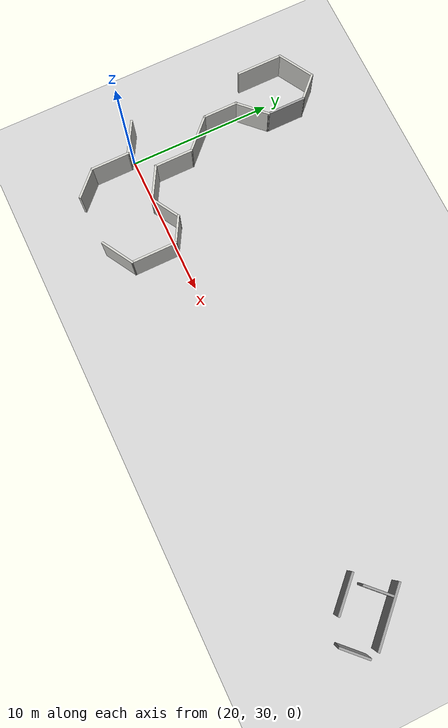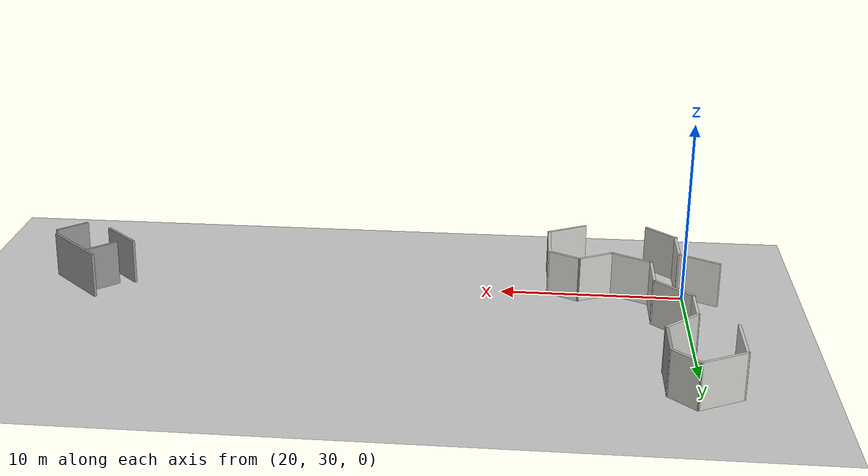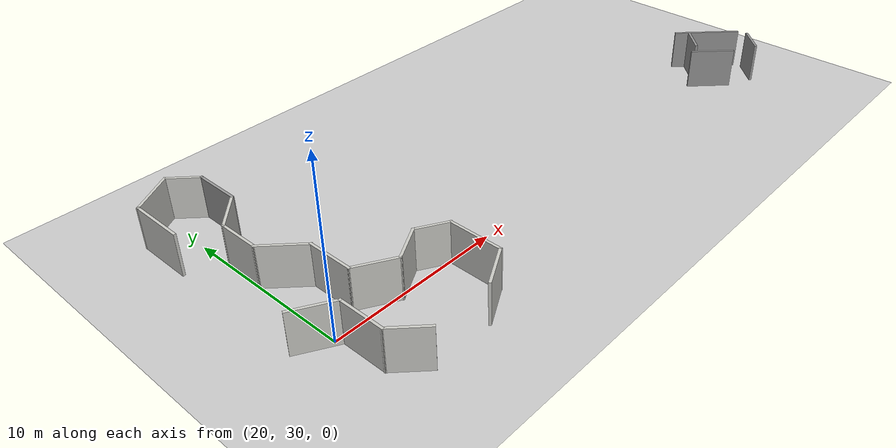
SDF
<sdf version="1.6">
 <world name="default">
  <model name="ground_plane">
   <pose>50 50 0 0 -0 0</pose>
   <static>1</static>
   <link name="link">
    <collision name="collision">
     <geometry><plane><normal>0 0 1</normal><size>100 100</size></plane></geometry>
     <surface><friction><ode><mu>100</mu><mu2>50</mu2></ode></friction></surface>
    </collision>
    <visual name="visual">
     <cast_shadows>0</cast_shadows>
     <geometry><plane><normal>0 0 1</normal><size>100 100</size></plane></geometry>
     <material>
      <script><uri>file://media/materials/scripts/gazebo.material</uri><name>Gazebo/Grey</name></script>
     </material>
    </visual>
   </link>
  </model>
  <model name="obs2_5">
   <pose>53.1069 30.618 0 0 -0 0</pose>
   <link name="Wall_0">
    <collision name="Wall_0_Collision">
     <geometry><box><size>2 0.15 2.5</size></box></geometry>
     <pose>0 0 1.25 0 -0 0</pose>
    </collision>
    <visual name="Wall_0_Visual">
     <pose>0 0 1.25 0 -0 0</pose>
     <geometry><box><size>2 0.15 2.5</size></box></geometry>
     <material>
      <script><uri>file://media/materials/scripts/gazebo.material</uri><name>Gazebo/Grey</name></script>
      <ambient>1 1 1 1</ambient>
     </material>
    </visual>
    <pose>-0.796332 1.10862 0 0 -0 0.785398</pose>
   </link>
   <link name="Wall_2">
    <collision name="Wall_2_Collision">
     <geometry><box><size>4.25 0.15 2.5</size></box></geometry>
     <pose>0 0 1.25 0 -0 0</pose>
    </collision>
    <visual name="Wall_2_Visual">
     <pose>0 0 1.25 0 -0 0</pose>
     <geometry><box><size>4.25 0.15 2.5</size></box></geometry>
     <material>
      <script><uri>file://media/materials/scripts/gazebo.material</uri><name>Gazebo/Grey</name></script>
      <ambient>1 1 1 1</ambient>
     </material>
    </visual>
    <pose>0.773928 0.982661 0 0 0 -0.785398</pose>
   </link>
   <link name="Wall_4">
    <collision name="Wall_4_Collision">
     <geometry><box><size>2.75 0.15 2.5</size></box></geometry>
     <pose>0 0 1.25 0 -0 0</pose>
    </collision>
    <visual name="Wall_4_Visual">
     <pose>0 0 1.25 0 -0 0</pose>
     <geometry><box><size>2.75 0.15 2.5</size></box></geometry>
     <material>
      <script><uri>file://media/materials/scripts/gazebo.material</uri><name>Gazebo/Grey</name></script>
      <ambient>1 1 1 1</ambient>
     </material>
    </visual>
    <pose>-1.45556 -0.740711 0 0 0 -0.785398</pose>
   </link>
   <link name="Wall_6">
    <collision name="Wall_6_Collision">
     <geometry><box><size>2 0.15 2.5</size></box></geometry>
     <pose>0 0 1.25 0 -0 0</pose>
    </collision>
    <visual name="Wall_6_Visual">
     <pose>0 0 1.25 0 -0 0</pose>
     <geometry><box><size>2 0.15 2.5</size></box></geometry>
     <material>
      <script><uri>file://media/materials/scripts/gazebo.material</uri><name>Gazebo/Grey</name></script>
      <ambient>1 1 1 1</ambient>
     </material>
    </visual>
    <pose>1.72073 -1.77816 0 0 -0 0.785398</pose>
   </link>
   <static>1</static>
  </model>
  <model name="maze_1">
   <pose>17.3845 3.82743 0 0 -0 1.57331</pose>
   <link name="Wall_150">
    <collision name="Wall_150_Collision">
     <geometry><box><size>2.25 0.15 2.5</size></box></geometry>
     <pose>0 0 1.25 0 -0 0</pose>
    </collision>
    <visual name="Wall_150_Visual">
     <pose>0 0 1.25 0 -0 0</pose>
     <geometry><box><size>2.25 0.15 2.5</size></box></geometry>
     <material>
      <script><uri>file://media/materials/scripts/gazebo.material</uri><name>Gazebo/CeilingTiled</name></script>
      <ambient>1 1 1 1</ambient>
     </material>
     <meta><layer>0</layer></meta>
    </visual>
    <pose>22.4958 -3.69561 0 0 -0 0.785398</pose>
   </link>
   <link name="Wall_151">
    <collision name="Wall_151_Collision">
     <geometry><box><size>2.75 0.15 2.5</size></box></geometry>
     <pose>0 0 1.25 0 -0 0</pose>
    </collision>
    <visual name="Wall_151_Visual">
     <pose>0 0 1.25 0 -0 0</pose>
     <geometry><box><size>2.75 0.15 2.5</size></box></geometry>
     <material>
      <script><uri>file://media/materials/scripts/gazebo.material</uri><name>Gazebo/CeilingTiled</name></script>
      <ambient>1 1 1 1</ambient>
     </material>
     <meta><layer>0</layer></meta>
    </visual>
    <pose>24.5383 -2.95315 0 0 -0 0</pose>
   </link>
   <link name="Wall_152">
    <collision name="Wall_152_Collision">
     <geometry><box><size>2.5 0.15 2.5</size></box></geometry>
     <pose>0 0 1.25 0 -0 0</pose>
    </collision>
    <visual name="Wall_152_Visual">
     <pose>0 0 1.25 0 -0 0</pose>
     <geometry><box><size>2.5 0.15 2.5</size></box></geometry>
     <material>
      <script><uri>file://media/materials/scripts/gazebo.material</uri><name>Gazebo/CeilingTiled</name></script>
      <ambient>1 1 1 1</ambient>
     </material>
     <meta><layer>0</layer></meta>
    </visual>
    <pose>26.4258 -1.93557 0 0 -0 1.0472</pose>
   </link>
   <link name="Wall_188">
    <collision name="Wall_188_Collision">
     <geometry><box><size>2.5 0.15 2.5</size></box></geometry>
     <pose>0 0 1.25 0 -0 0</pose>
    </collision>
    <visual name="Wall_188_Visual">
     <pose>0 0 1.25 0 -0 0</pose>
     <geometry><box><size>2.5 0.15 2.5</size></box></geometry>
     <material>
      <script><uri>file://media/materials/scripts/gazebo.material</uri><name>Gazebo/CeilingTiled</name></script>
      <ambient>1 1 1 1</ambient>
     </material>
     <meta><layer>0</layer></meta>
    </visual>
    <pose>22.4072 -9.0215 0 0 -0 -1.0472</pose>
   </link>
   <link name="Wall_189">
    <collision name="Wall_189_Collision">
     <geometry><box><size>3.25 0.15 2.5</size></box></geometry>
     <pose>0 0 1.25 0 -0 0</pose>
    </collision>
    <visual name="Wall_189_Visual">
     <pose>0 0 1.25 0 -0 0</pose>
     <geometry><box><size>3.25 0.15 2.5</size></box></geometry>
     <material>
      <script><uri>file://media/materials/scripts/gazebo.material</uri><name>Gazebo/CeilingTiled</name></script>
      <ambient>1 1 1 1</ambient>
     </material>
     <meta><layer>0</layer></meta>
    </visual>
    <pose>24.5447 -10.0391 0 0 -0 0</pose>
   </link>
   <link name="Wall_190">
    <collision name="Wall_190_Collision">
     <geometry><box><size>2 0.15 2.5</size></box></geometry>
     <pose>0 0 1.25 0 -0 0</pose>
    </collision>
    <visual name="Wall_190_Visual">
     <pose>0 0 1.25 0 -0 0</pose>
     <geometry><box><size>2 0.15 2.5</size></box></geometry>
     <material>
      <script><uri>file://media/materials/scripts/gazebo.material</uri><name>Gazebo/CeilingTiled</name></script>
      <ambient>1 1 1 1</ambient>
     </material>
     <meta><layer>0</layer></meta>
    </visual>
    <pose>26.5572 -9.23801 0 0 -0 1.0472</pose>
   </link>
   <link name="Wall_191">
    <collision name="Wall_191_Collision">
     <geometry><box><size>2.25 0.15 2.5</size></box></geometry>
     <pose>0 0 1.25 0 -0 0</pose>
    </collision>
    <visual name="Wall_191_Visual">
     <pose>0 0 1.25 0 -0 0</pose>
     <geometry><box><size>2.25 0.15 2.5</size></box></geometry>
     <material>
      <script><uri>file://media/materials/scripts/gazebo.material</uri><name>Gazebo/CeilingTiled</name></script>
      <ambient>1 1 1 1</ambient>
     </material>
     <meta><layer>0</layer></meta>
    </visual>
    <pose>26.4947 -7.52761 0 0 -0 2.0944</pose>
   </link>
   <link name="Wall_192">
    <collision name="Wall_192_Collision">
     <geometry><box><size>2.5 0.15 2.5</size></box></geometry>
     <pose>0 0 1.25 0 -0 0</pose>
    </collision>
    <visual name="Wall_192_Visual">
     <pose>0 0 1.25 0 -0 0</pose>
     <geometry><box><size>2.5 0.15 2.5</size></box></geometry>
     <material>
      <script><uri>file://media/materials/scripts/gazebo.material</uri><name>Gazebo/CeilingTiled</name></script>
      <ambient>1 1 1 1</ambient>
     </material>
     <meta><layer>0</layer></meta>
    </visual>
    <pose>26.5572 -5.6007 0 0 -0 1.0472</pose>
   </link>
   <link name="Wall_193">
    <collision name="Wall_193_Collision">
     <geometry><box><size>2.75 0.15 2.5</size></box></geometry>
     <pose>0 0 1.25 0 -0 0</pose>
    </collision>
    <visual name="Wall_193_Visual">
     <pose>0 0 1.25 0 -0 0</pose>
     <geometry><box><size>2.75 0.15 2.5</size></box></geometry>
     <material>
      <script><uri>file://media/materials/scripts/gazebo.material</uri><name>Gazebo/CeilingTiled</name></script>
      <ambient>1 1 1 1</ambient>
     </material>
     <meta><layer>0</layer></meta>
    </visual>
    <pose>28.4447 -4.58312 0 0 -0 0</pose>
   </link>
   <link name="Wall_194">
    <collision name="Wall_194_Collision">
     <geometry><box><size>2.75 0.15 2.5</size></box></geometry>
     <pose>0 0 1.25 0 -0 0</pose>
    </collision>
    <visual name="Wall_194_Visual">
     <pose>0 0 1.25 0 -0 0</pose>
     <geometry><box><size>2.75 0.15 2.5</size></box></geometry>
     <material>
      <script><uri>file://media/materials/scripts/gazebo.material</uri><name>Gazebo/CeilingTiled</name></script>
      <ambient>1 1 1 1</ambient>
     </material>
     <meta><layer>0</layer></meta>
    </visual>
    <pose>30.664 -3.66389 0 0 -0 0.785398</pose>
   </link>
   <link name="Wall_195">
    <collision name="Wall_195_Collision">
     <geometry><box><size>2.5 0.15 2.5</size></box></geometry>
     <pose>0 0 1.25 0 -0 0</pose>
    </collision>
    <visual name="Wall_195_Visual">
     <pose>0 0 1.25 0 -0 0</pose>
     <geometry><box><size>2.5 0.15 2.5</size></box></geometry>
     <material>
      <script><uri>file://media/materials/scripts/gazebo.material</uri><name>Gazebo/CeilingTiled</name></script>
      <ambient>1 1 1 1</ambient>
     </material>
     <meta><layer>0</layer></meta>
    </visual>
    <pose>32.7582 -2.74465 0 0 -0 0</pose>
   </link>
   <link name="Wall_196">
    <collision name="Wall_196_Collision">
     <geometry><box><size>2.5 0.15 2.5</size></box></geometry>
     <pose>0 0 1.25 0 -0 0</pose>
    </collision>
    <visual name="Wall_196_Visual">
     <pose>0 0 1.25 0 -0 0</pose>
     <geometry><box><size>2.5 0.15 2.5</size></box></geometry>
     <material>
      <script><uri>file://media/materials/scripts/gazebo.material</uri><name>Gazebo/CeilingTiled</name></script>
      <ambient>1 1 1 1</ambient>
     </material>
     <meta><layer>0</layer></meta>
    </visual>
    <pose>34.764 -3.5755 0 0 -0 -0.785398</pose>
   </link>
   <link name="Wall_197">
    <collision name="Wall_197_Collision">
     <geometry><box><size>2.75 0.15 2.5</size></box></geometry>
     <pose>0 0 1.25 0 -0 0</pose>
    </collision>
    <visual name="Wall_197_Visual">
     <pose>0 0 1.25 0 -0 0</pose>
     <geometry><box><size>2.75 0.15 2.5</size></box></geometry>
     <material>
      <script><uri>file://media/materials/scripts/gazebo.material</uri><name>Gazebo/Grey</name></script>
      <ambient>1 1 1 1</ambient>
     </material>
     <meta><layer>0</layer></meta>
    </visual>
    <pose>36.8949 -4.40635 0 0 -0 0</pose>
   </link>
   <link name="Wall_198">
    <collision name="Wall_198_Collision">
     <geometry><box><size>2 0.15 2.5</size></box></geometry>
     <pose>0 0 1.25 0 -0 0</pose>
    </collision>
    <visual name="Wall_198_Visual">
     <pose>0 0 1.25 0 -0 0</pose>
     <geometry><box><size>2 0.15 2.5</size></box></geometry>
     <material>
      <script><uri>file://media/materials/scripts/gazebo.material</uri><name>Gazebo/CeilingTiled</name></script>
      <ambient>1 1 1 1</ambient>
     </material>
     <meta><layer>0</layer></meta>
    </visual>
    <pose>38.849 -3.75227 0 0 -0 0.785398</pose>
   </link>
   <link name="Wall_199">
    <collision name="Wall_199_Collision">
     <geometry><box><size>2.75 0.15 2.5</size></box></geometry>
     <pose>0 0 1.25 0 -0 0</pose>
    </collision>
    <visual name="Wall_199_Visual">
     <pose>0 0 1.25 0 -0 0</pose>
     <geometry><box><size>2.75 0.15 2.5</size></box></geometry>
     <material>
      <script><uri>file://media/materials/scripts/gazebo.material</uri><name>Gazebo/CeilingTiled</name></script>
      <ambient>1 1 1 1</ambient>
     </material>
     <meta><layer>0</layer></meta>
    </visual>
    <pose>38.853 -1.97237 0 0 -0 2.0944</pose>
   </link>
   <link name="Wall_200">
    <collision name="Wall_200_Collision">
     <geometry><box><size>3.25 0.15 2.5</size></box></geometry>
     <pose>0 0 1.25 0 -0 0</pose>
    </collision>
    <visual name="Wall_200_Visual">
     <pose>0 0 1.25 0 -0 0</pose>
     <geometry><box><size>3.25 0.15 2.5</size></box></geometry>
     <material>
      <script><uri>file://media/materials/scripts/gazebo.material</uri><name>Gazebo/CeilingTiled</name></script>
      <ambient>1 1 1 1</ambient>
     </material>
     <meta><layer>0</layer></meta>
    </visual>
    <pose>36.653 -0.846533 0 0 -0 3.14159</pose>
   </link>
   <static>1</static>
  </model>
 </world>
</sdf>
